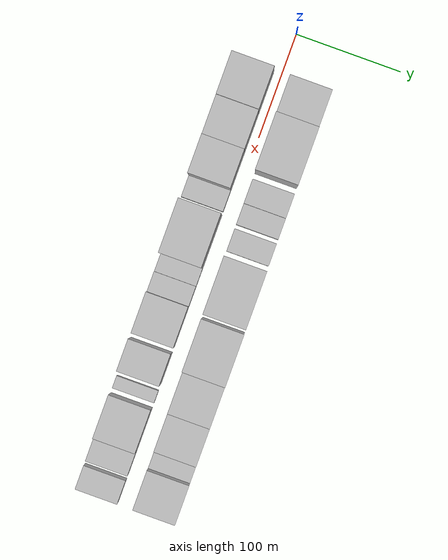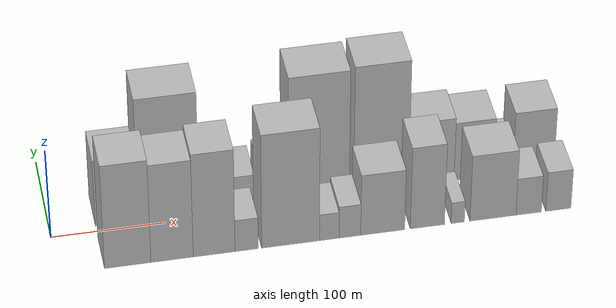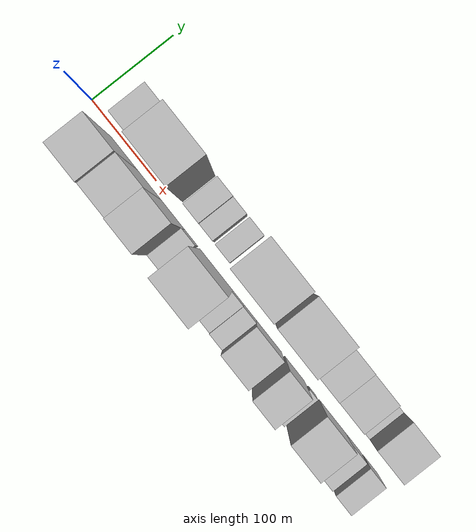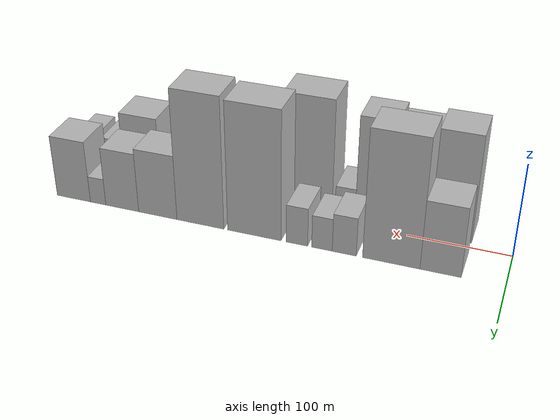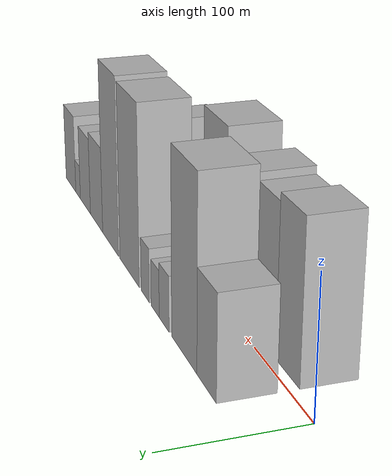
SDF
<sdf version="1.6">
 <world name="default">
  <scene>
   <sky><clouds><speed>12</speed></clouds></sky>
   <ambient>0.4 0.4 0.4 1</ambient>
   <background>0.7 0.7 0.7 1</background>
   <shadows>1</shadows>
  </scene>
  <gravity>0 0 -9.8066</gravity>
  <magnetic_field>6e-06 2.3e-05 -4.2e-05</magnetic_field>
  <physics default="0" name="default_physics" type="ode">
   <ode>
    <solver>
     <type>quick</type>
     <iters>10</iters>
     <sor>1.0</sor>
     <use_dynamic_moi_rescaling>0</use_dynamic_moi_rescaling>
    </solver>
    <constraints>
     <cfm>0</cfm>
     <erp>0.2</erp>
     <contact_max_correcting_vel>100</contact_max_correcting_vel>
     <contact_surface_layer>0.001</contact_surface_layer>
    </constraints>
   </ode>
   <max_step_size>0.004</max_step_size>
   <real_time_factor>1</real_time_factor>
   <real_time_update_rate>250</real_time_update_rate>
  </physics>
  <light name="sun" type="directional">
   <pose>0 0 10 0 0 0</pose>
   <diffuse>0.8 0.8 0.8 1</diffuse>
   <specular>0.2 0.2 0.2 1</specular>
   <attenuation>
    <range>1000</range>
    <constant>0.9</constant>
    <linear>0.01</linear>
    <quadratic>0.001</quadratic>
   </attenuation>
   <direction>-0.5 0.1 -0.9</direction>
  </light>
  <model name="building_1">
   <static>1</static>
   <pose>58.8400 27.5000 0 0.000000 0.000000 1.570796</pose>
   <link name="link">
    <pose>0 0 37.50 0 0 0</pose>
    <collision name="collision"><geometry><box><size>40.0000 37.6799 75.0000</size></box></geometry></collision>
    <visual name="visual">
     <cast_shadows>0</cast_shadows>
     <geometry><box><size>40.0000 37.6799 75.0000</size></box></geometry>
     <material>
      <script>
       <uri>model://HANNAS_wall/materials/scripts</uri>
       <uri>model://HANNAS_wall/materials/textures</uri>
       <name>vrc/HANNAS_wall</name>
      </script>
     </material>
    </visual>
   </link>
  </model>
  <model name="building_2">
   <static>1</static>
   <pose>104.6688 27.5000 0 0.000000 0.000000 1.570796</pose>
   <link name="link">
    <pose>0 0 69.00 0 0 0</pose>
    <collision name="collision"><geometry><box><size>40.0000 53.9778 138.0000</size></box></geometry></collision>
    <visual name="visual">
     <cast_shadows>0</cast_shadows>
     <geometry><box><size>40.0000 53.9778 138.0000</size></box></geometry>
     <material>
      <script>
       <uri>model://HANNAS_wall/materials/scripts</uri>
       <uri>model://HANNAS_wall/materials/textures</uri>
       <name>vrc/HANNAS_wall</name>
      </script>
     </material>
    </visual>
   </link>
  </model>
  <model name="building_3">
   <static>1</static>
   <pose>149.2676 27.5000 0 0.000000 0.000000 1.570796</pose>
   <link name="link">
    <pose>0 0 21.00 0 0 0</pose>
    <collision name="collision"><geometry><box><size>40.0000 23.2197 42.0000</size></box></geometry></collision>
    <visual name="visual">
     <cast_shadows>0</cast_shadows>
     <geometry><box><size>40.0000 23.2197 42.0000</size></box></geometry>
     <material>
      <script>
       <uri>model://HANNAS_wall/materials/scripts</uri>
       <uri>model://HANNAS_wall/materials/textures</uri>
       <name>vrc/HANNAS_wall</name>
      </script>
     </material>
    </visual>
   </link>
  </model>
  <model name="building_4">
   <static>1</static>
   <pose>170.9201 27.5000 0 0.000000 0.000000 1.570796</pose>
   <link name="link">
    <pose>0 0 18.00 0 0 0</pose>
    <collision name="collision"><geometry><box><size>40.0000 20.0852 36.0000</size></box></geometry></collision>
    <visual name="visual">
     <cast_shadows>0</cast_shadows>
     <geometry><box><size>40.0000 20.0852 36.0000</size></box></geometry>
     <material>
      <script>
       <uri>model://HANNAS_wall/materials/scripts</uri>
       <uri>model://HANNAS_wall/materials/textures</uri>
       <name>vrc/HANNAS_wall</name>
      </script>
     </material>
    </visual>
   </link>
  </model>
  <model name="building_5">
   <static>1</static>
   <pose>195.6894 27.5000 0 0.000000 0.000000 1.570796</pose>
   <link name="link">
    <pose>0 0 21.00 0 0 0</pose>
    <collision name="collision"><geometry><box><size>40.0000 21.4534 42.0000</size></box></geometry></collision>
    <visual name="visual">
     <cast_shadows>0</cast_shadows>
     <geometry><box><size>40.0000 21.4534 42.0000</size></box></geometry>
     <material>
      <script>
       <uri>model://HANNAS_wall/materials/scripts</uri>
       <uri>model://HANNAS_wall/materials/textures</uri>
       <name>vrc/HANNAS_wall</name>
      </script>
     </material>
    </visual>
   </link>
  </model>
  <model name="building_6">
   <static>1</static>
   <pose>238.5602 27.5000 0 0.000000 0.000000 1.570796</pose>
   <link name="link">
    <pose>0 0 70.50 0 0 0</pose>
    <collision name="collision"><geometry><box><size>40.0000 54.2883 141.0000</size></box></geometry></collision>
    <visual name="visual">
     <cast_shadows>0</cast_shadows>
     <geometry><box><size>40.0000 54.2883 141.0000</size></box></geometry>
     <material>
      <script>
       <uri>model://HANNAS_wall/materials/scripts</uri>
       <uri>model://HANNAS_wall/materials/textures</uri>
       <name>vrc/HANNAS_wall</name>
      </script>
     </material>
    </visual>
   </link>
  </model>
  <model name="building_7">
   <static>1</static>
   <pose>294.3670 27.5000 0 0.000000 0.000000 1.570796</pose>
   <link name="link">
    <pose>0 0 72.00 0 0 0</pose>
    <collision name="collision"><geometry><box><size>40.0000 49.3252 144.0000</size></box></geometry></collision>
    <visual name="visual">
     <cast_shadows>0</cast_shadows>
     <geometry><box><size>40.0000 49.3252 144.0000</size></box></geometry>
     <material>
      <script>
       <uri>model://HANNAS_wall/materials/scripts</uri>
       <uri>model://HANNAS_wall/materials/textures</uri>
       <name>vrc/HANNAS_wall</name>
      </script>
     </material>
    </visual>
   </link>
  </model>
  <model name="building_8">
   <static>1</static>
   <pose>339.6621 27.5000 0 0.000000 0.000000 1.570796</pose>
   <link name="link">
    <pose>0 0 36.00 0 0 0</pose>
    <collision name="collision"><geometry><box><size>40.0000 41.2650 72.0000</size></box></geometry></collision>
    <visual name="visual">
     <cast_shadows>0</cast_shadows>
     <geometry><box><size>40.0000 41.2650 72.0000</size></box></geometry>
     <material>
      <script>
       <uri>model://HANNAS_wall/materials/scripts</uri>
       <uri>model://HANNAS_wall/materials/textures</uri>
       <name>vrc/HANNAS_wall</name>
      </script>
     </material>
    </visual>
   </link>
  </model>
  <model name="building_9">
   <static>1</static>
   <pose>378.3962 27.5000 0 0.000000 0.000000 1.570796</pose>
   <link name="link">
    <pose>0 0 33.00 0 0 0</pose>
    <collision name="collision"><geometry><box><size>40.0000 36.2031 66.0000</size></box></geometry></collision>
    <visual name="visual">
     <cast_shadows>0</cast_shadows>
     <geometry><box><size>40.0000 36.2031 66.0000</size></box></geometry>
     <material>
      <script>
       <uri>model://HANNAS_wall/materials/scripts</uri>
       <uri>model://HANNAS_wall/materials/textures</uri>
       <name>vrc/HANNAS_wall</name>
      </script>
     </material>
    </visual>
   </link>
  </model>
  <model name="building_10">
   <static>1</static>
   <pose>405.1131 27.5000 0 0.000000 0.000000 1.570796</pose>
   <link name="link">
    <pose>0 0 15.00 0 0 0</pose>
    <collision name="collision"><geometry><box><size>40.0000 17.2309 30.0000</size></box></geometry></collision>
    <visual name="visual">
     <cast_shadows>0</cast_shadows>
     <geometry><box><size>40.0000 17.2309 30.0000</size></box></geometry>
     <material>
      <script>
       <uri>model://HANNAS_wall/materials/scripts</uri>
       <uri>model://HANNAS_wall/materials/textures</uri>
       <name>vrc/HANNAS_wall</name>
      </script>
     </material>
    </visual>
   </link>
  </model>
  <model name="building_11">
   <static>1</static>
   <pose>432.5110 27.5000 0 0.000000 0.000000 1.570796</pose>
   <link name="link">
    <pose>0 0 34.50 0 0 0</pose>
    <collision name="collision"><geometry><box><size>40.0000 37.5649 69.0000</size></box></geometry></collision>
    <visual name="visual">
     <cast_shadows>0</cast_shadows>
     <geometry><box><size>40.0000 37.5649 69.0000</size></box></geometry>
     <material>
      <script>
       <uri>model://HANNAS_wall/materials/scripts</uri>
       <uri>model://HANNAS_wall/materials/textures</uri>
       <name>vrc/HANNAS_wall</name>
      </script>
     </material>
    </visual>
   </link>
  </model>
  <model name="building_12">
   <static>1</static>
   <pose>60.1853 -27.5000 0 0.000000 0.000000 1.570796</pose>
   <link name="link">
    <pose>0 0 58.50 0 0 0</pose>
    <collision name="collision"><geometry><box><size>40.0000 40.3706 117.0000</size></box></geometry></collision>
    <visual name="visual">
     <cast_shadows>0</cast_shadows>
     <geometry><box><size>40.0000 40.3706 117.0000</size></box></geometry>
     <material>
      <script>
       <uri>model://HANNAS_wall/materials/scripts</uri>
       <uri>model://HANNAS_wall/materials/textures</uri>
       <name>vrc/HANNAS_wall</name>
      </script>
     </material>
    </visual>
   </link>
  </model>
  <model name="building_13">
   <static>1</static>
   <pose>98.8434 -27.5000 0 0.000000 0.000000 1.570796</pose>
   <link name="link">
    <pose>0 0 55.50 0 0 0</pose>
    <collision name="collision"><geometry><box><size>40.0000 36.9456 111.0000</size></box></geometry></collision>
    <visual name="visual">
     <cast_shadows>0</cast_shadows>
     <geometry><box><size>40.0000 36.9456 111.0000</size></box></geometry>
     <material>
      <script>
       <uri>model://HANNAS_wall/materials/scripts</uri>
       <uri>model://HANNAS_wall/materials/textures</uri>
       <name>vrc/HANNAS_wall</name>
      </script>
     </material>
    </visual>
   </link>
  </model>
  <model name="building_14">
   <static>1</static>
   <pose>135.6205 -27.5000 0 0.000000 0.000000 1.570796</pose>
   <link name="link">
    <pose>0 0 58.50 0 0 0</pose>
    <collision name="collision"><geometry><box><size>40.0000 36.6086 117.0000</size></box></geometry></collision>
    <visual name="visual">
     <cast_shadows>0</cast_shadows>
     <geometry><box><size>40.0000 36.6086 117.0000</size></box></geometry>
     <material>
      <script>
       <uri>model://HANNAS_wall/materials/scripts</uri>
       <uri>model://HANNAS_wall/materials/textures</uri>
       <name>vrc/HANNAS_wall</name>
      </script>
     </material>
    </visual>
   </link>
  </model>
  <model name="building_15">
   <static>1</static>
   <pose>164.1002 -27.5000 0 0.000000 0.000000 1.570796</pose>
   <link name="link">
    <pose>0 0 18.00 0 0 0</pose>
    <collision name="collision"><geometry><box><size>40.0000 20.3509 36.0000</size></box></geometry></collision>
    <visual name="visual">
     <cast_shadows>0</cast_shadows>
     <geometry><box><size>40.0000 20.3509 36.0000</size></box></geometry>
     <material>
      <script>
       <uri>model://HANNAS_wall/materials/scripts</uri>
       <uri>model://HANNAS_wall/materials/textures</uri>
       <name>vrc/HANNAS_wall</name>
      </script>
     </material>
    </visual>
   </link>
  </model>
  <model name="building_16">
   <static>1</static>
   <pose>202.7653 -27.5000 0 0.000000 0.000000 1.570796</pose>
   <link name="link">
    <pose>0 0 64.50 0 0 0</pose>
    <collision name="collision"><geometry><box><size>40.0000 50.9794 129.0000</size></box></geometry></collision>
    <visual name="visual">
     <cast_shadows>0</cast_shadows>
     <geometry><box><size>40.0000 50.9794 129.0000</size></box></geometry>
     <material>
      <script>
       <uri>model://HANNAS_wall/materials/scripts</uri>
       <uri>model://HANNAS_wall/materials/textures</uri>
       <name>vrc/HANNAS_wall</name>
      </script>
     </material>
    </visual>
   </link>
  </model>
  <model name="building_17">
   <static>1</static>
   <pose>236.8703 -27.5000 0 0.000000 0.000000 1.570796</pose>
   <link name="link">
    <pose>0 0 15.00 0 0 0</pose>
    <collision name="collision"><geometry><box><size>40.0000 17.2304 30.0000</size></box></geometry></collision>
    <visual name="visual">
     <cast_shadows>0</cast_shadows>
     <geometry><box><size>40.0000 17.2304 30.0000</size></box></geometry>
     <material>
      <script>
       <uri>model://HANNAS_wall/materials/scripts</uri>
       <uri>model://HANNAS_wall/materials/textures</uri>
       <name>vrc/HANNAS_wall</name>
      </script>
     </material>
    </visual>
   </link>
  </model>
  <model name="building_18">
   <static>1</static>
   <pose>255.1080 -27.5000 0 0.000000 0.000000 1.570796</pose>
   <link name="link">
    <pose>0 0 18.00 0 0 0</pose>
    <collision name="collision"><geometry><box><size>40.0000 19.2450 36.0000</size></box></geometry></collision>
    <visual name="visual">
     <cast_shadows>0</cast_shadows>
     <geometry><box><size>40.0000 19.2450 36.0000</size></box></geometry>
     <material>
      <script>
       <uri>model://HANNAS_wall/materials/scripts</uri>
       <uri>model://HANNAS_wall/materials/textures</uri>
       <name>vrc/HANNAS_wall</name>
      </script>
     </material>
    </visual>
   </link>
  </model>
  <model name="building_19">
   <static>1</static>
   <pose>284.2855 -27.5000 0 0.000000 0.000000 1.570796</pose>
   <link name="link">
    <pose>0 0 34.50 0 0 0</pose>
    <collision name="collision"><geometry><box><size>40.0000 39.1100 69.0000</size></box></geometry></collision>
    <visual name="visual">
     <cast_shadows>0</cast_shadows>
     <geometry><box><size>40.0000 39.1100 69.0000</size></box></geometry>
     <material>
      <script>
       <uri>model://HANNAS_wall/materials/scripts</uri>
       <uri>model://HANNAS_wall/materials/textures</uri>
       <name>vrc/HANNAS_wall</name>
      </script>
     </material>
    </visual>
   </link>
  </model>
  <model name="building_20">
   <static>1</static>
   <pose>324.0773 -27.5000 0 0.000000 0.000000 1.570796</pose>
   <link name="link">
    <pose>0 0 46.50 0 0 0</pose>
    <collision name="collision"><geometry><box><size>40.0000 30.4735 93.0000</size></box></geometry></collision>
    <visual name="visual">
     <cast_shadows>0</cast_shadows>
     <geometry><box><size>40.0000 30.4735 93.0000</size></box></geometry>
     <material>
      <script>
       <uri>model://HANNAS_wall/materials/scripts</uri>
       <uri>model://HANNAS_wall/materials/textures</uri>
       <name>vrc/HANNAS_wall</name>
      </script>
     </material>
    </visual>
   </link>
  </model>
  <model name="building_21">
   <static>1</static>
   <pose>351.1966 -27.5000 0 0.000000 0.000000 1.570796</pose>
   <link name="link">
    <pose>0 0 12.00 0 0 0</pose>
    <collision name="collision"><geometry><box><size>40.0000 11.7651 24.0000</size></box></geometry></collision>
    <visual name="visual">
     <cast_shadows>0</cast_shadows>
     <geometry><box><size>40.0000 11.7651 24.0000</size></box></geometry>
     <material>
      <script>
       <uri>model://HANNAS_wall/materials/scripts</uri>
       <uri>model://HANNAS_wall/materials/textures</uri>
       <name>vrc/HANNAS_wall</name>
      </script>
     </material>
    </visual>
   </link>
  </model>
  <model name="building_22">
   <static>1</static>
   <pose>382.7248 -27.5000 0 0.000000 0.000000 1.570796</pose>
   <link name="link">
    <pose>0 0 37.50 0 0 0</pose>
    <collision name="collision"><geometry><box><size>40.0000 41.2914 75.0000</size></box></geometry></collision>
    <visual name="visual">
     <cast_shadows>0</cast_shadows>
     <geometry><box><size>40.0000 41.2914 75.0000</size></box></geometry>
     <material>
      <script>
       <uri>model://HANNAS_wall/materials/scripts</uri>
       <uri>model://HANNAS_wall/materials/textures</uri>
       <name>vrc/HANNAS_wall</name>
      </script>
     </material>
    </visual>
   </link>
  </model>
  <model name="building_23">
   <static>1</static>
   <pose>414.7781 -27.5000 0 0.000000 0.000000 1.570796</pose>
   <link name="link">
    <pose>0 0 21.00 0 0 0</pose>
    <collision name="collision"><geometry><box><size>40.0000 22.8152 42.0000</size></box></geometry></collision>
    <visual name="visual">
     <cast_shadows>0</cast_shadows>
     <geometry><box><size>40.0000 22.8152 42.0000</size></box></geometry>
     <material>
      <script>
       <uri>model://HANNAS_wall/materials/scripts</uri>
       <uri>model://HANNAS_wall/materials/textures</uri>
       <name>vrc/HANNAS_wall</name>
      </script>
     </material>
    </visual>
   </link>
  </model>
  <model name="building_24">
   <static>1</static>
   <pose>441.4714 -27.5000 0 0.000000 0.000000 1.570796</pose>
   <link name="link">
    <pose>0 0 22.50 0 0 0</pose>
    <collision name="collision"><geometry><box><size>40.0000 22.5715 45.0000</size></box></geometry></collision>
    <visual name="visual">
     <cast_shadows>0</cast_shadows>
     <geometry><box><size>40.0000 22.5715 45.0000</size></box></geometry>
     <material>
      <script>
       <uri>model://HANNAS_wall/materials/scripts</uri>
       <uri>model://HANNAS_wall/materials/textures</uri>
       <name>vrc/HANNAS_wall</name>
      </script>
     </material>
    </visual>
   </link>
  </model>
 </world>
</sdf>
